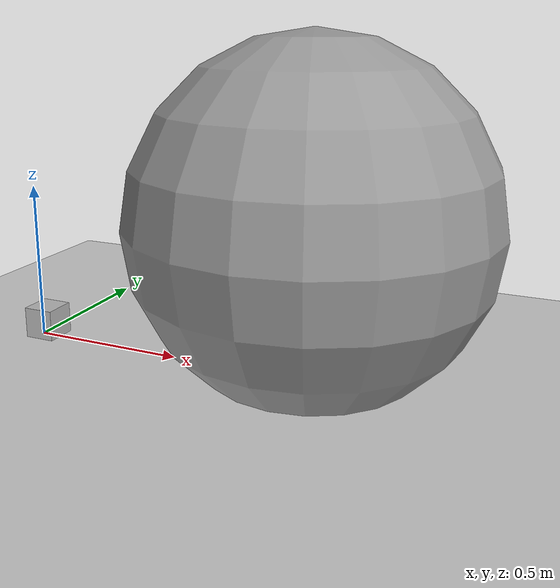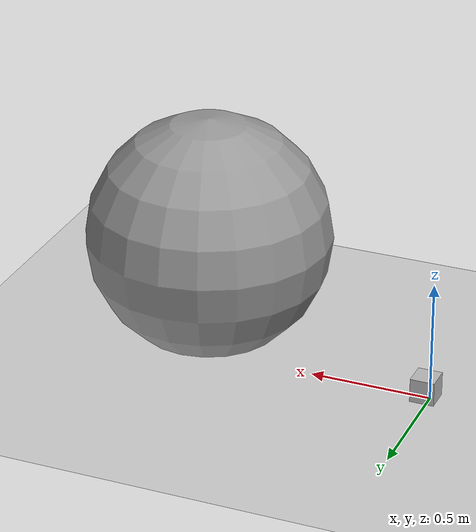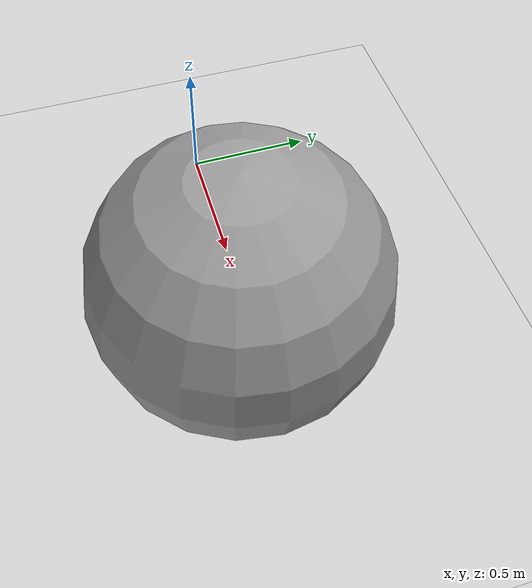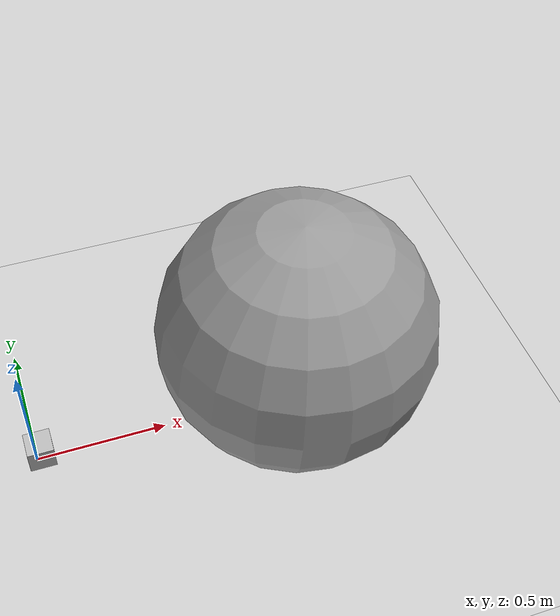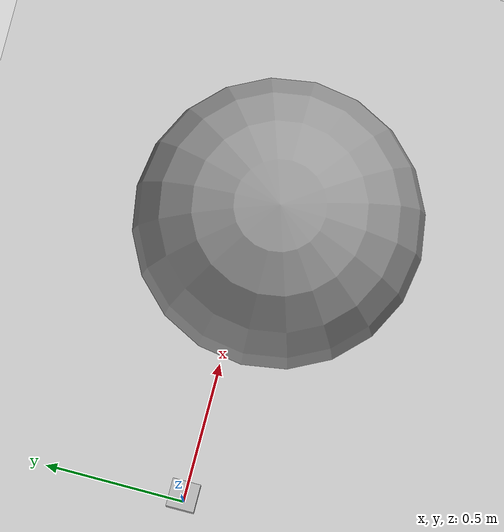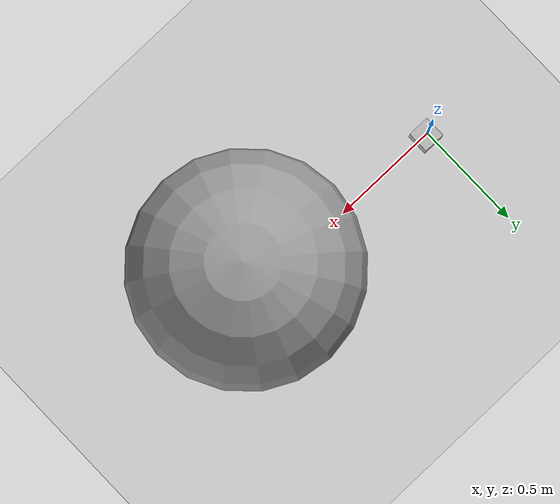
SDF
<sdf version="1.7">
 <world name="default">
  <light name="sun" type="directional">
   <pose>0 0 10 0 -0 0</pose>
   <diffuse>0.8 0.8 0.8 1</diffuse>
   <specular>0.2 0.2 0.2 1</specular>
   <attenuation>
    <range>1000</range>
    <constant>0.9</constant>
    <linear>0.01</linear>
    <quadratic>0.001</quadratic>
   </attenuation>
   <direction>-0.5 0.1 -0.9</direction>
   <spot><inner_angle>0</inner_angle><outer_angle>0</outer_angle><falloff>0</falloff></spot>
  </light>
  <model name="ground_plane">
   <static>1</static>
   <link name="link">
    <collision name="collision">
     <geometry><plane><normal>0 0 1</normal><size>100 100</size></plane></geometry>
     <surface>
      <contact><collide_bitmask>65535</collide_bitmask></contact>
      <friction><ode><mu>100</mu><mu2>50</mu2></ode></friction>
     </surface>
    </collision>
    <visual name="visual">
     <cast_shadows>0</cast_shadows>
     <geometry><plane><normal>0 0 1</normal><size>100 100</size></plane></geometry>
     <material>
      <script><uri>file://media/materials/scripts/gazebo.material</uri><name>Gazebo/Grey</name></script>
     </material>
    </visual>
   </link>
  </model>
  <gravity>0 0 -9.8</gravity>
  <magnetic_field>6e-06 2.3e-05 -4.2e-05</magnetic_field>
  <atmosphere type="adiabatic"/>
  <physics type="ode">
   <max_step_size>0.001</max_step_size>
   <real_time_factor>1</real_time_factor>
   <real_time_update_rate>1000</real_time_update_rate>
  </physics>
  <scene><ambient>0.4 0.4 0.4 1</ambient><background>0.7 0.7 0.7 1</background><shadows>1</shadows></scene>
  <audio><device>default</device></audio>
  <spherical_coordinates>
   <surface_model>EARTH_WGS84</surface_model>
   <latitude_deg>0</latitude_deg>
   <longitude_deg>0</longitude_deg>
   <elevation>0</elevation>
   <heading_deg>0</heading_deg>
  </spherical_coordinates>
  <model name="camera">
   <pose>0.017755 0.004295 0.049992 -8e-06 3.2e-05 -1e-06</pose>
   <link name="link">
    <inertial>
     <mass>0.1</mass>
     <inertia>
      <ixx>0.000166667</ixx>
      <iyy>0.000166667</iyy>
      <izz>0.000166667</izz>
      <ixy>0</ixy>
      <ixz>0</ixz>
      <iyz>0</iyz>
     </inertia>
    </inertial>
    <collision name="collision"><geometry><box><size>0.1 0.1 0.1</size></box></geometry></collision>
    <visual name="visual"><geometry><box><size>0.1 0.1 0.1</size></box></geometry></visual>
    <sensor name="camera" type="camera">
     <plugin name="nrp_camera" filename="NRPGazeboJSONCameraControllerPlugin.so"/>
     <camera>
      <horizontal_fov>1.047</horizontal_fov>
      <image><width>320</width><height>240</height></image>
      <clip><near>0.1</near><far>100</far></clip>
     </camera>
     <always_on>1</always_on>
     <update_rate>30</update_rate>
     <visualize>1</visualize>
    </sensor>
   </link>
  </model>
  <plugin name="nrp_world_plugin" filename="NRPGazeboGrpcWorldPlugin.so"/>
  <model name="unit_sphere">
   <pose>0.977823 -0.081545 0.5 0 -0 0</pose>
   <link name="link">
    <inertial>
     <mass>1</mass>
     <inertia><ixx>0.1</ixx><ixy>0</ixy><ixz>0</ixz><iyy>0.1</iyy><iyz>0</iyz><izz>0.1</izz></inertia>
    </inertial>
    <collision name="collision"><geometry><sphere><radius>0.5</radius></sphere></geometry></collision>
    <visual name="visual">
     <geometry><sphere><radius>0.5</radius></sphere></geometry>
     <material>
      <script><name>Gazebo/Grey</name><uri>file://media/materials/scripts/gazebo.material</uri></script>
     </material>
    </visual>
   </link>
  </model>
 </world>
</sdf>
